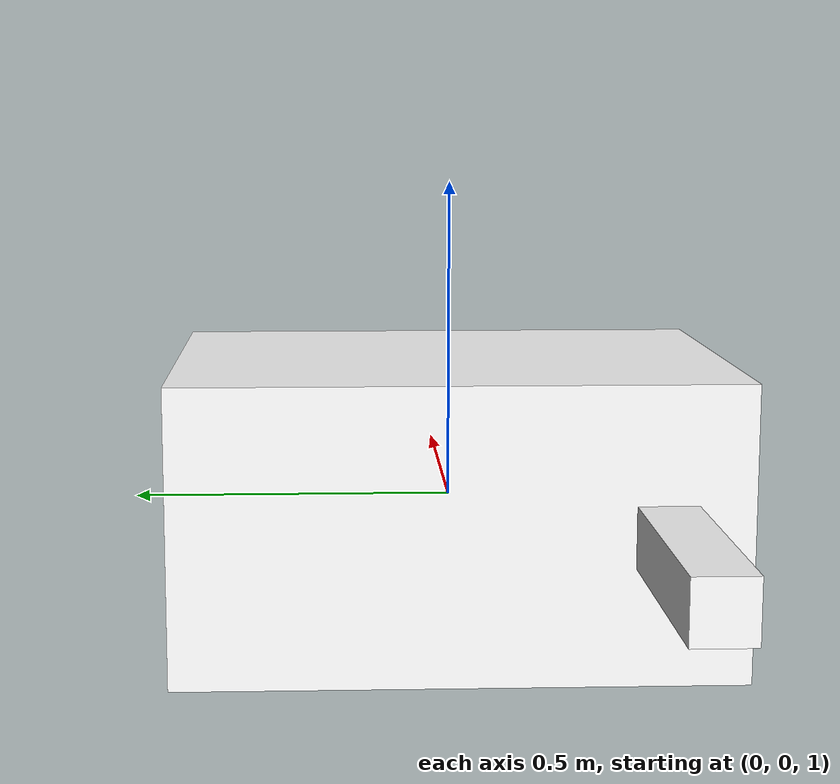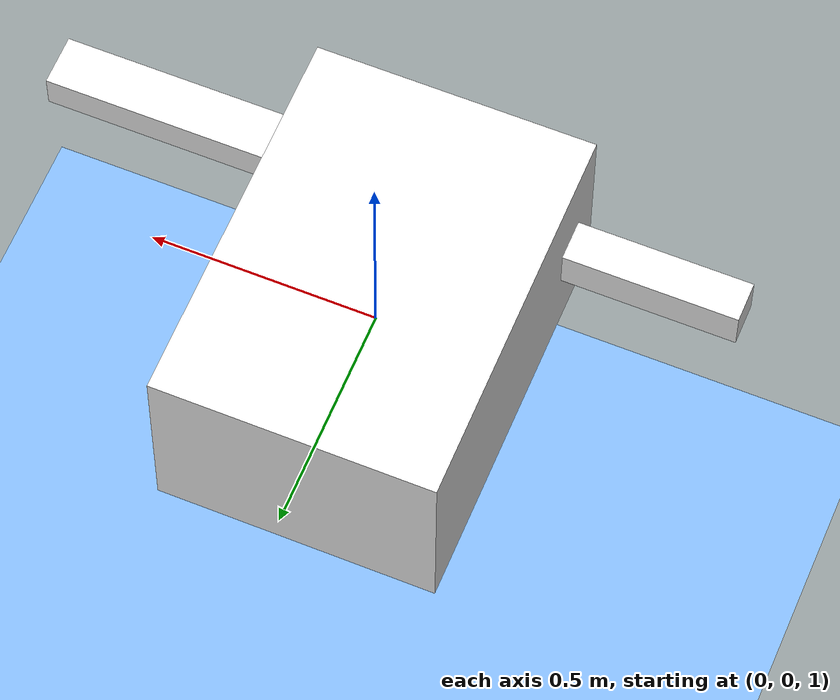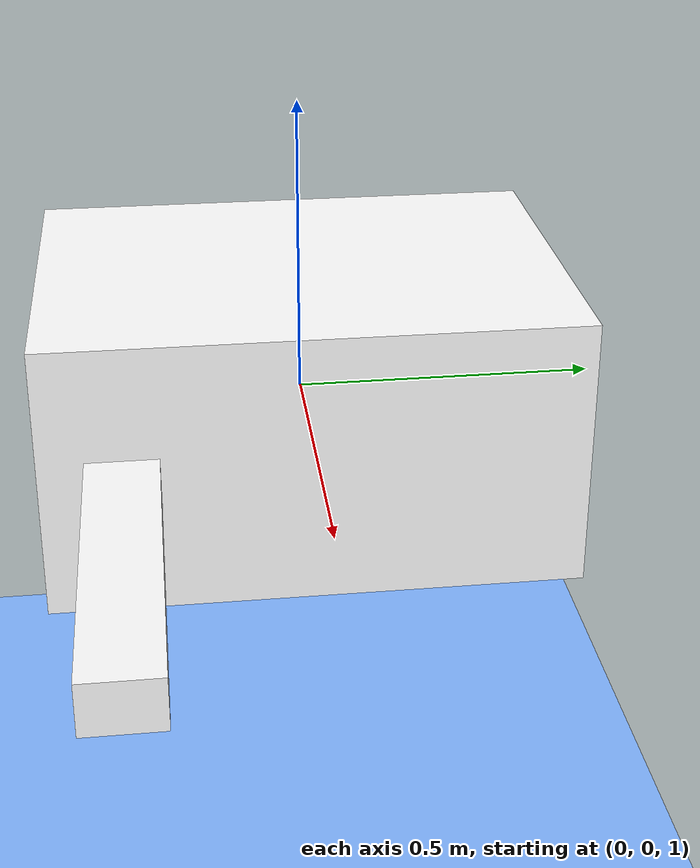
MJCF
<mujoco>
    <worldbody>
        <light diffuse=".5 .5 .5" pos="0 0 2" dir="0 -1 0" />
        <geom type="plane" size="10 10 0.1" rgba="0.5 0.7 1 1" />

        <body name="flappybird" pos="0 0 1" euler="0 0 0">
            <joint type="free" axis="0 0 0" pos="0 0 0" />
            <body name="body" pos="0 0 0" euler="0 0 0">
                <geom type="box" size="0.3082992222031398 0.4294717106645001 0.22486215310825797" rgba="1 1 1 1" mass="0.012076914886598886" />
            </body>

            <body name="wing1" pos=".5 -.3 0" euler="0 -90 0">
                <joint name="joint1" type="hinge" axis="0 1 0" pos="0 0 .25" range="-45 45" />
                <geom type="box" size="0.03983078756905897 0.0572231113141262 0.3517658347585632" rgba="1 1 1 1" mass="0.5442654767902787" />
            </body>

            <body name="wing2" pos="-.5 -.3 0" euler="0 90 0">
                <joint name="joint2" type="hinge" axis="0 1 0" pos="0 0 .25" range="-45 45" />
                <geom type="box" size="0.046463410872432255 0.0456546606006012 0.19343876441741345" rgba="1 1 1 1" mass="0.47834548315168396" />
            </body>

        </body>
    </worldbody>

    <actuator>
        <motor joint="joint1" name="m1" gear="8.850206434426687" ctrllimited="true" ctrlrange="-5 5" />
        <motor joint="joint2" name="m2" gear="11.162524863235152" ctrllimited="true" ctrlrange="-5 5" />

</actuator>

</mujoco>
